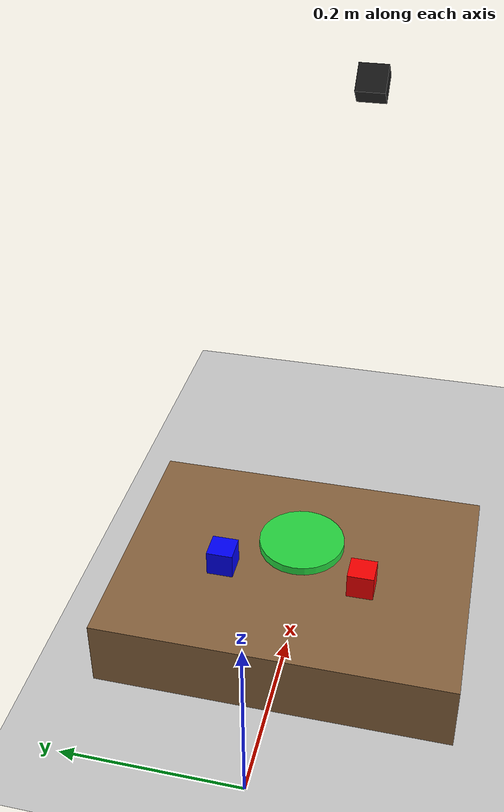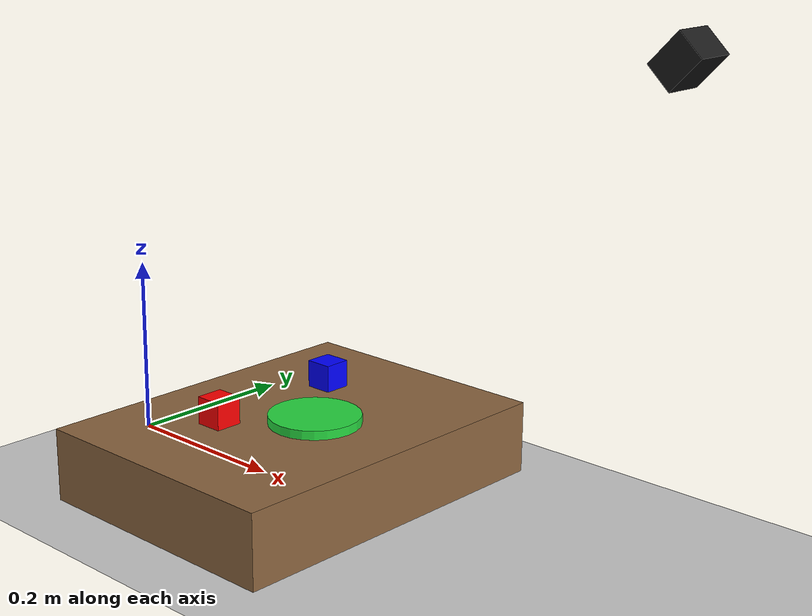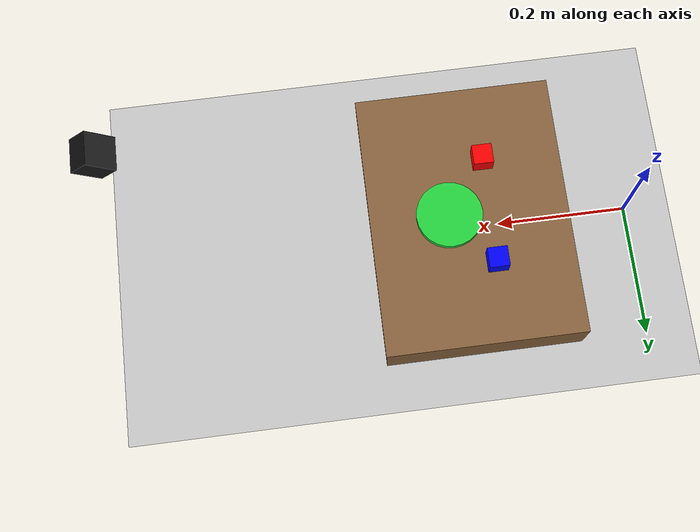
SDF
<?xml version="1.0" ?>
<sdf version="1.9">
  <world name="balls_world">

    <physics name="4ms" type="ignored">
      <max_step_size>0.004</max_step_size>
      <real_time_factor>1.0</real_time_factor>
    </physics>

    <plugin
      filename="gz-sim-physics-system"
      name="gz::sim::systems::Physics"/>
    <plugin
      filename="gz-sim-user-commands-system"
      name="gz::sim::systems::UserCommands"/>
    <plugin
      filename="gz-sim-scene-broadcaster-system"
      name="gz::sim::systems::SceneBroadcaster"/>
    <plugin
      filename="gz-sim-sensors-system"
      name="gz::sim::systems::Sensors"/>
    <light type="directional" name="sun">
      <cast_shadows>true</cast_shadows>
      <pose>0 0 10 0 0 0</pose>
      <diffuse>0.8 0.8 0.8 1</diffuse>
      <specular>0.2 0.2 0.2 1</specular>
      <direction>-0.5 0.1 -0.9</direction>
    </light>

    <model name="ground_plane">
      <static>true</static>
      <link name="link">
        <collision name="collision">
          <geometry>
            <plane>
              <normal>0 0 1</normal>
              <size>10 10</size>
            </plane>
          </geometry>
        </collision>
        <visual name="visual">
          <geometry>
            <plane>
              <normal>0 0 1</normal>
              <size>10 10</size>
            </plane>
          </geometry>
          <material>
            <ambient>0.8 0.8 0.8 1</ambient>
            <diffuse>0.8 0.8 0.8 1</diffuse>
          </material>
        </visual>
      </link>
    </model>

    <model name="table">
      <static>true</static>
      <pose>0.25 0.0 0.04 0 0 0</pose>
      <link name="link">
        <collision name="collision">
          <geometry>
            <box>
              <size>0.30 0.40 0.08</size>
            </box>
          </geometry>
        </collision>
        <visual name="visual">
          <geometry>
            <box>
              <size>0.30 0.40 0.08</size>
            </box>
          </geometry>
          <material>
            <ambient>0.5 0.35 0.2 1</ambient>
            <diffuse>0.55 0.4 0.25 1</diffuse>
          </material>
        </visual>
      </link>
    </model>

    <model name="red_ball">
      <static>false</static>
      <pose>0.22 -0.08 0.10 0 0 0</pose>
      <link name="link">
        <inertial>
          <mass>0.05</mass>
          <inertia>
            <ixx>0.00002</ixx>
            <iyy>0.00002</iyy>
            <izz>0.00002</izz>
            <ixy>0</ixy>
            <ixz>0</ixz>
            <iyz>0</iyz>
          </inertia>
        </inertial>
        <!-- 5cm cube: flat faces pinch reliably between the jaws. Visual
             matches the collision so what you see is what the gripper grips. -->
        <collision name="collision">
          <geometry>
            <box>
              <size>0.03 0.03 0.03</size>
            </box>
          </geometry>
          <surface>
            <friction>
              <ode>
                <mu>2.0</mu>
                <mu2>2.0</mu2>
              </ode>
            </friction>
          </surface>
        </collision>
        <visual name="visual">
          <geometry>
            <box>
              <size>0.03 0.03 0.03</size>
            </box>
          </geometry>
          <material>
            <ambient>1 0 0 1</ambient>
            <diffuse>1 0 0 1</diffuse>
          </material>
        </visual>
      </link>
    </model>

    <model name="blue_ball">
      <static>false</static>
      <pose>0.22 0.08 0.10 0 0 0</pose>
      <link name="link">
        <inertial>
          <mass>0.05</mass>
          <inertia>
            <ixx>0.00002</ixx>
            <iyy>0.00002</iyy>
            <izz>0.00002</izz>
            <ixy>0</ixy>
            <ixz>0</ixz>
            <iyz>0</iyz>
          </inertia>
        </inertial>
        <collision name="collision">
          <geometry>
            <box>
              <size>0.03 0.03 0.03</size>
            </box>
          </geometry>
          <surface>
            <friction>
              <ode>
                <mu>2.0</mu>
                <mu2>2.0</mu2>
              </ode>
            </friction>
          </surface>
        </collision>
        <visual name="visual">
          <geometry>
            <box>
              <size>0.03 0.03 0.03</size>
            </box>
          </geometry>
          <material>
            <ambient>0 0 1 1</ambient>
            <diffuse>0 0 1 1</diffuse>
          </material>
        </visual>
      </link>
    </model>

    <model name="place_target">
      <static>true</static>
      <pose>0.28 0.00 0.085 0 0 0</pose>
      <link name="link">
        <visual name="visual">
          <geometry>
            <cylinder>
              <radius>0.05</radius>
              <length>0.01</length>
            </cylinder>
          </geometry>
          <material>
            <ambient>0.10 0.65 0.20 1</ambient>
            <diffuse>0.15 0.85 0.25 1</diffuse>
            <specular>0.1 0.1 0.1 1</specular>
          </material>
        </visual>
      </link>
    </model>

    <model name="third_person_camera">
      <static>true</static>
      <pose>0.70 0.00 0.50 0 0.81 3.14159</pose>
      <link name="link">
        <inertial>
          <mass>0.01</mass>
          <inertia>
            <ixx>1e-6</ixx>
            <iyy>1e-6</iyy>
            <izz>1e-6</izz>
            <ixy>0</ixy>
            <ixz>0</ixz>
            <iyz>0</iyz>
          </inertia>
        </inertial>
        <visual name="visual">
          <geometry>
            <box>
              <size>0.04 0.04 0.03</size>
            </box>
          </geometry>
          <material>
            <ambient>0.1 0.1 0.1 1</ambient>
            <diffuse>0.1 0.1 0.1 1</diffuse>
          </material>
        </visual>
        <sensor name="third_person" type="camera">
          <always_on>true</always_on>
          <visualize>false</visualize>
          <update_rate>5</update_rate>
          <topic>third_person/image_raw</topic>
          <camera>
            <horizontal_fov>1.3</horizontal_fov>
            <image>
              <width>224</width>
              <height>224</height>
              <format>R8G8B8</format>
            </image>
            <clip>
              <near>0.05</near>
              <far>5.0</far>
            </clip>
          </camera>
        </sensor>
      </link>
    </model>

  </world>
</sdf>
